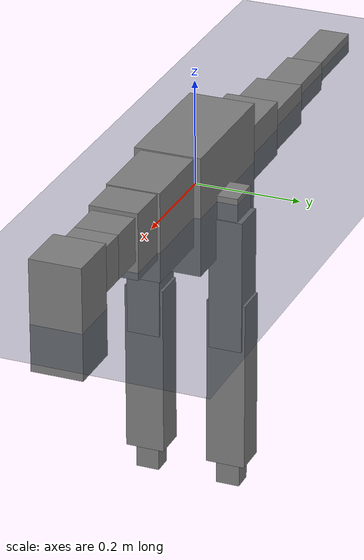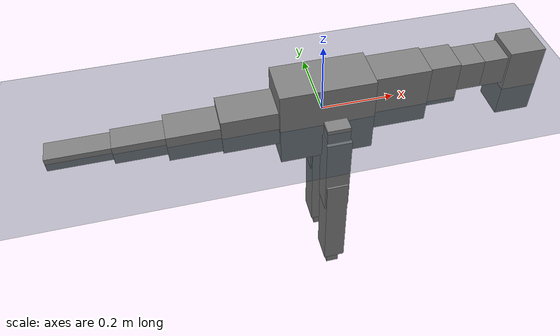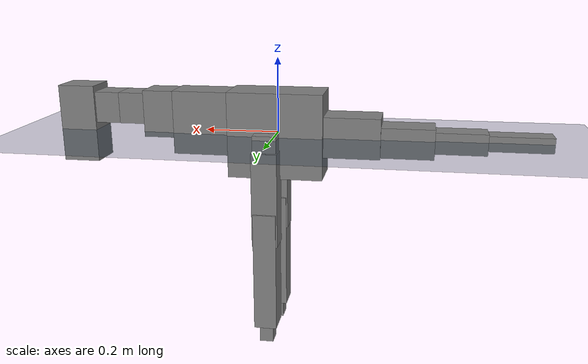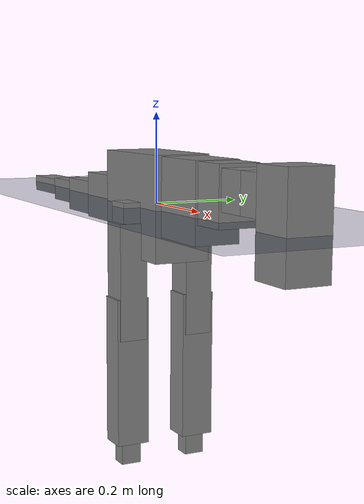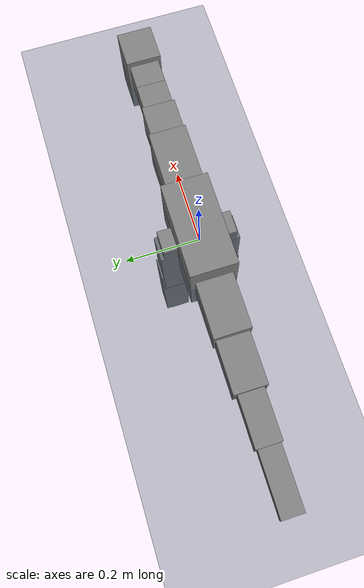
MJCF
<mujoco model="dog">

    <default>
        <joint armature="0.02" stiffness="1" damping="0.2" limited="true"/>
        <geom condim="3" friction="1.0 1  1" margin="0.01"/>
        <motor ctrllimited="true" ctrlrange="-1.0 1.0" forcelimited="true"/>
    </default>

    <compiler inertiafromgeom="true" angle="radian"/>

    <option timestep="0.016" iterations="50" tolerance="1e-10" solver="Newton" jacobian="dense" cone="pyramidal"/>

    <size nconmax="20000" njmax="60000" nstack="5000000"/>
    <visual>
        <map force="0.1" zfar="30"/>
        <rgba haze="0.15 0.25 0.35 1"/>
        <quality shadowsize="2048"/>
        <global offwidth="800" offheight="800"/>
    </visual>

    <asset>
        <texture type="skybox" builtin="gradient" rgb1="0.3 0.5 0.7" rgb2="0 0 0" width="512" height="512"/>
        <texture name="texplane" type="2d" builtin="checker" rgb1=".2 .3 .4" rgb2=".1 0.15 0.2" width="512" height="512"
                 mark="cross" markrgb=".8 .8 .8"/>
        <texture name="texgeom" type="cube" builtin="flat" mark="cross" width="127" height="1278" rgb1="0.8 0.6 0.4"
                 rgb2="0.8 0.6 0.4" markrgb="1 1 1" random="0.01"/>

        <material name="matplane" reflectance="0.3" texture="texplane" texrepeat="1 1" texuniform="true"/>
        <material name="matgeom" texture="texgeom" texuniform="true" rgba="0.8 0.6 .4 1"/>
    </asset>

    <worldbody>
        <geom name="floor" pos="0 0 0" size="0 0 .25" type="plane" material="matplane" condim="3"/>

        <light directional="false" diffuse=".2 .2 .2" specular="0 0 0" pos="0 0 5" dir="0 0 -1" castshadow="false"/>
        <light mode="targetbodycom" target="torso" directional="false" diffuse=".8 .8 .8" specular="0.3 0.3 0.3"
               pos="0 0 4.0" dir="0 0 -1"/>

        <body name="root" pos="0 0 0">
            <freejoint name="root_y"/>
            <geom type="box" size="0.1278 0.063 0.1147" density="2030"/>
            <body name="spine0" pos="0.1058 0 0.0777">
                <joint name="spine0_y" axis="0 1 0" range="-0.4 -0.2"/>
                <geom type="box" pos="0.0868 0 -0.05065" size="0.0868 0.05 0.085" density="1038"/>

                <body name="spine1" pos="0.1736 0 0">
                    <joint name="spine1_y" axis="0 1 0" range="-0.2 -0.1"/>
                    <geom type="box" pos="0.042 0 -0.03" size="0.0415 0.045 0.06285" density="1038"/>

                    <body name="spine2" pos="0.083 0 0">
                        <joint name="spine2_y" axis="0 1 0" range="-0.3 -0.2"/>
                        <geom type="box" pos="0.0319 0 -0.017" size="0.0394 0.04 0.0417" density="1038"/>

                        <body name="spine3" pos="0.0788 0 0">
                            <joint name="spine3_y" axis="0 1 0" range="-0.3 -0.2"/>
                            <geom type="box" pos="0.0319 0 -0.017" size="0.0394 0.04 0.0417" density="1538"/>

                            <body name="head" pos="0.0688 0 0">
                                <joint name="head_y" axis="0 1 0" range="-0.8  -0.5"/>
                                <geom type="box" pos="0.041 0 -0.063" size="0.05 0.0475 0.1043" density="2508"/>
                            </body>
                        </body>
                    </body>
                </body>
            </body>

            <body name="tail0" pos="-0.13 0 0">
                <joint name="tail0_y" axis="0 1 0" range="-0.4 0.1"/>
                <geom type="box" pos="-0.048 0 0" size="0.1 0.05 0.054" density="409"/>

                <body name="tail1" pos="-0.17 0 -0.01">
                    <joint name="tail1_y" axis="0 1 0" range="0.1 0.2"/>
                    <geom type="box" pos="-0.0475 0 0" size="0.07 0.045 0.04" density="409"/>

                    <body name="tail2" pos="-0.14 0 0">
                        <joint name="tail3_y" axis="0 1 0" range="0.1 0.2"/>
                        <geom type="box" pos="-0.0423 0 0.002" size="0.07 0.035 0.0282" density="400"/>

                        <body name="tail3" pos="-0.15 0 0">
                            <joint name="tail4_y" axis="0 1 0" range="0.1 0.2"/>
                            <geom type="box" pos="-0.0423 0 0.005" size="0.0846 0.03 0.02" density="400"/>
                        </body>
                    </body>
                </body>
            </body>

            <body name="leg_hip" pos="0.02 0 0">
                <joint name="leg_hip_y" axis="0 1 0" range="-1.2 0.8"/>
                <geom type="box" pos="0 0.08 -0.0438" size="0.0317  0.0220  0.0538" density="1048"/>
                <geom type="box" pos="0 -0.08 -0.0438" size="0.0317  0.0220  0.0538" density="1048"/>

                <body name="leg_knee" pos="0  0  -0.0876">
                    <joint name="leg_knee_y" axis="0 1 0" range="0 1"/>
                    <geom type="box" pos="0 0.08 -0.0769" size="0.0345  0.0318  0.1289" density="1513"/>
                    <geom type="box" pos="0 -0.08 -0.0769" size="0.0345  0.0318  0.1289" density="1513"/>

                    <body name="leg_ankle" pos="0  0  -0.1538">
                        <joint name="leg_ankle_y" axis="0 1 0" range="-1.6 -0.4"/>
                        <geom type="box" pos="0 0.08 -0.1258" size="0.0311  0.0373  0.1658" density="1791"/>
                        <geom type="box" pos="0 -0.08 -0.1258" size="0.0311  0.0373  0.1658" density="1791"/>

                        <body name="leg_toe_end" pos="-0.0187  0  -0.2515">
                            <joint name="leg_toe_end_y" axis="0 1 0" range="-0.8 0.1"/>
                            <geom type="box" pos="0.0187  0.08  -0.0443" size="0.0187  0.0224  0.0443" density="1388"/>
                            <geom type="box" pos="0.0187  -0.08  -0.0443" size="0.0187  0.0224  0.0443" density="1388"/>
                        </body>
                    </body>
                </body>
            </body>
        </body>
    </worldbody>

    <actuator>
        <motor joint="spine0_y" forcerange="-150 150   "/>
        <motor joint="spine1_y" forcerange="-150 150   "/>
        <motor joint="spine2_y" forcerange="-150 150   "/>
        <motor joint="spine3_y" forcerange="-150 150   "/>
        <motor joint="head_y" forcerange="-150 150   "/>
        <motor joint="tail0_y" forcerange="-50 50    "/>
        <motor joint="tail1_y" forcerange="-50 50    "/>
        <motor joint="tail2_y" forcerange="-50 50    "/>
        <motor joint="tail3_y" forcerange="-50 50    "/>
        <motor joint="leg_hip_y" forcerange="-351.55 318.93"/>
        <motor joint="leg_knee_y" forcerange="-499.83 324.20"/>
        <motor joint="leg_ankle_y" forcerange="-497.67 399.52"/>
        <motor joint="leg_toe_end_y" forcerange="-162.29 187.25"/>
    </actuator>

</mujoco>
